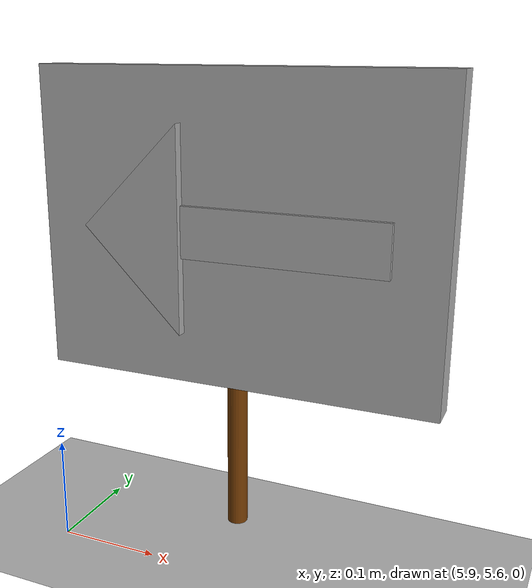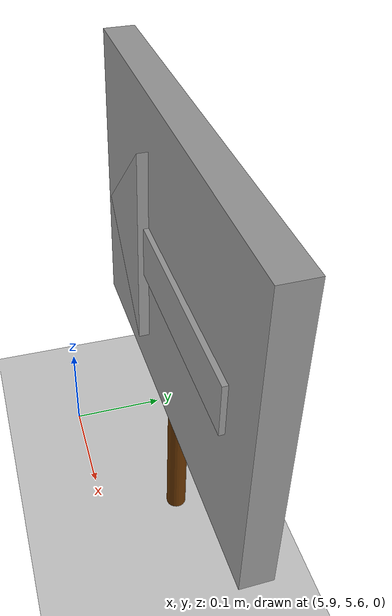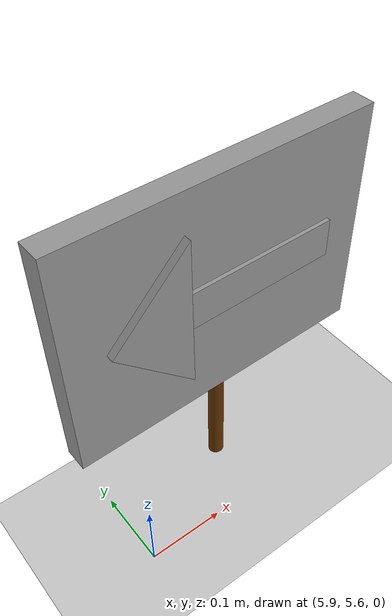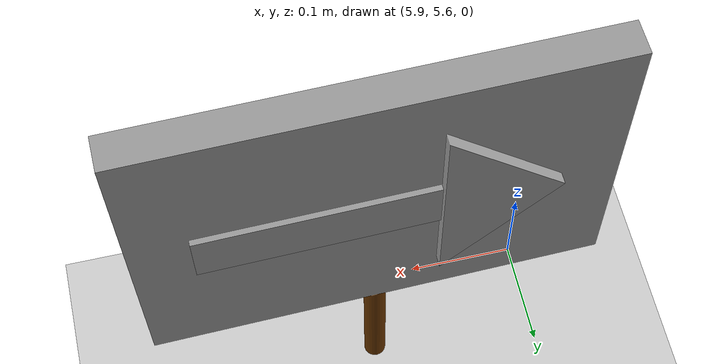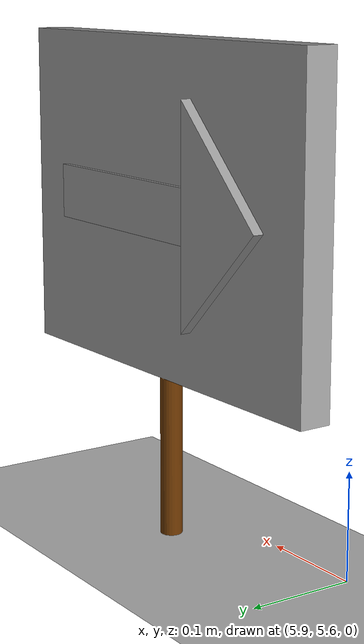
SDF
<sdf version="1.7">
 <world name="default">
  <model name="ground_plane">
   <static>1</static>
   <link name="link">
    <collision name="collision">
     <geometry><plane><normal>0 0 1</normal><size>100 100</size></plane></geometry>
     <surface>
      <contact><collide_bitmask>65535</collide_bitmask></contact>
      <friction><ode><mu>100</mu><mu2>50</mu2></ode></friction>
     </surface>
    </collision>
    <visual name="visual">
     <cast_shadows>0</cast_shadows>
     <geometry><plane><normal>0 0 1</normal><size>100 100</size></plane></geometry>
     <material>
      <script><uri>file://media/materials/scripts/gazebo.material</uri><name>Gazebo/Grey</name></script>
     </material>
    </visual>
   </link>
  </model>
  <model name="arrow_board_2">
   <link name="link_0">
    <inertial>
     <mass>1</mass>
     <inertia><ixx>0.145833</ixx><ixy>0</ixy><ixz>0</ixz><iyy>0.145833</iyy><iyz>0</iyz><izz>0.125</izz></inertia>
    </inertial>
    <pose>-0.01675 0.00625 0.1625 0 -0 0</pose>
    <gravity>0</gravity>
    <visual name="visual">
     <geometry><cylinder><radius>0.01</radius><length>0.3</length></cylinder></geometry>
     <material>
      <lighting>1</lighting>
      <script><uri>file://media/materials/scripts/gazebo.material</uri><name>Gazebo/Grey</name></script>
      <shader type="pixel"><normal_map>__default__</normal_map></shader>
      <ambient>0.4 0.2 0 1</ambient>
      <diffuse>0.4 0.2 0 1</diffuse>
      <specular>0 0 0 1</specular>
      <emissive>0 0 0 1</emissive>
     </material>
    </visual>
    <collision name="collision">
     <geometry><cylinder><radius>0.01</radius><length>0.3</length></cylinder></geometry>
     <surface>
      <friction>
       <ode><mu>1</mu><mu2>1</mu2><fdir1>0 0 0</fdir1><slip1>0</slip1><slip2>0</slip2></ode>
       <torsional>
        <coefficient>1</coefficient>
        <patch_radius>0</patch_radius>
        <surface_radius>0</surface_radius>
        <use_patch_radius>1</use_patch_radius>
        <ode><slip>0</slip></ode>
       </torsional>
      </friction>
      <bounce><restitution_coefficient>0</restitution_coefficient><threshold>1e+06</threshold></bounce>
      <contact>
       <collide_without_contact>0</collide_without_contact>
       <collide_without_contact_bitmask>1</collide_without_contact_bitmask>
       <collide_bitmask>1</collide_bitmask>
       <ode>
        <soft_cfm>0</soft_cfm>
        <soft_erp>0.2</soft_erp>
        <kp>1e+13</kp>
        <kd>1</kd>
        <max_vel>0.01</max_vel>
        <min_depth>0</min_depth>
       </ode>
       <bullet>
        <split_impulse>1</split_impulse>
        <split_impulse_penetration_threshold>-0.01</split_impulse_penetration_threshold>
        <soft_cfm>0</soft_cfm>
        <soft_erp>0.2</soft_erp>
        <kp>1e+13</kp>
        <kd>1</kd>
       </bullet>
      </contact>
     </surface>
    </collision>
   </link>
   <link name="link_1">
    <inertial>
     <mass>1</mass>
     <inertia>
      <ixx>0.166667</ixx>
      <ixy>0</ixy>
      <ixz>0</ixz>
      <iyy>0.166667</iyy>
      <iyz>0</iyz>
      <izz>0.166667</izz>
     </inertia>
    </inertial>
    <pose>-0.01675 0.00625 0.3125 0 -0 0</pose>
    <gravity>0</gravity>
    <visual name="visual">
     <geometry><box><size>0.4 0.03 0.3</size></box></geometry>
     <material>
      <lighting>1</lighting>
      <script><uri>file://media/materials/scripts/gazebo.material</uri><name>Gazebo/Grey</name></script>
      <shader type="pixel"><normal_map>__default__</normal_map></shader>
      <ambient>1 1 1 1</ambient>
      <diffuse>1 1 1 1</diffuse>
      <specular>1 1 1 1</specular>
      <emissive>0 0 0 1</emissive>
     </material>
    </visual>
    <collision name="collision">
     <geometry><box><size>0.4 0.03 0.3</size></box></geometry>
     <surface>
      <friction>
       <ode><mu>1</mu><mu2>1</mu2><fdir1>0 0 0</fdir1><slip1>0</slip1><slip2>0</slip2></ode>
       <torsional>
        <coefficient>1</coefficient>
        <patch_radius>0</patch_radius>
        <surface_radius>0</surface_radius>
        <use_patch_radius>1</use_patch_radius>
        <ode><slip>0</slip></ode>
       </torsional>
      </friction>
      <bounce><restitution_coefficient>0</restitution_coefficient><threshold>1e+06</threshold></bounce>
      <contact>
       <collide_without_contact>0</collide_without_contact>
       <collide_without_contact_bitmask>1</collide_without_contact_bitmask>
       <collide_bitmask>1</collide_bitmask>
       <ode>
        <soft_cfm>0</soft_cfm>
        <soft_erp>0.2</soft_erp>
        <kp>1e+13</kp>
        <kd>1</kd>
        <max_vel>0.01</max_vel>
        <min_depth>0</min_depth>
       </ode>
       <bullet>
        <split_impulse>1</split_impulse>
        <split_impulse_penetration_threshold>-0.01</split_impulse_penetration_threshold>
        <soft_cfm>0</soft_cfm>
        <soft_erp>0.2</soft_erp>
        <kp>1e+13</kp>
        <kd>1</kd>
       </bullet>
      </contact>
     </surface>
    </collision>
   </link>
   <link name="link_2">
    <inertial>
     <mass>1</mass>
     <inertia>
      <ixx>0.166667</ixx>
      <ixy>0</ixy>
      <ixz>0</ixz>
      <iyy>0.166667</iyy>
      <iyz>0</iyz>
      <izz>0.166667</izz>
     </inertia>
    </inertial>
    <pose>-0.06675 0.00625 0.3125 0 -0 0</pose>
    <gravity>0</gravity>
    <visual name="visual">
     <geometry><box><size>0.2 0.04 0.05</size></box></geometry>
     <material>
      <lighting>1</lighting>
      <script><uri>file://media/materials/scripts/gazebo.material</uri><name>Gazebo/Grey</name></script>
      <shader type="pixel"><normal_map>__default__</normal_map></shader>
      <ambient>0 0 0 1</ambient>
      <diffuse>0 0 0 1</diffuse>
      <specular>0 0 0 1</specular>
      <emissive>0 0 0 1</emissive>
     </material>
    </visual>
    <collision name="collision">
     <geometry><box><size>0.2 0.04 0.05</size></box></geometry>
     <surface>
      <friction>
       <ode><mu>1</mu><mu2>1</mu2><fdir1>0 0 0</fdir1><slip1>0</slip1><slip2>0</slip2></ode>
       <torsional>
        <coefficient>1</coefficient>
        <patch_radius>0</patch_radius>
        <surface_radius>0</surface_radius>
        <use_patch_radius>1</use_patch_radius>
        <ode><slip>0</slip></ode>
       </torsional>
      </friction>
      <bounce><restitution_coefficient>0</restitution_coefficient><threshold>1e+06</threshold></bounce>
      <contact>
       <collide_without_contact>0</collide_without_contact>
       <collide_without_contact_bitmask>1</collide_without_contact_bitmask>
       <collide_bitmask>1</collide_bitmask>
       <ode>
        <soft_cfm>0</soft_cfm>
        <soft_erp>0.2</soft_erp>
        <kp>1e+13</kp>
        <kd>1</kd>
        <max_vel>0.01</max_vel>
        <min_depth>0</min_depth>
       </ode>
       <bullet>
        <split_impulse>1</split_impulse>
        <split_impulse_penetration_threshold>-0.01</split_impulse_penetration_threshold>
        <soft_cfm>0</soft_cfm>
        <soft_erp>0.2</soft_erp>
        <kp>1e+13</kp>
        <kd>1</kd>
       </bullet>
      </contact>
     </surface>
    </collision>
   </link>
   <link name="link_4">
    <inertial>
     <mass>1</mass>
     <inertia>
      <ixx>0.166667</ixx>
      <ixy>0</ixy>
      <ixz>0</ixz>
      <iyy>0.166667</iyy>
      <iyz>0</iyz>
      <izz>0.166667</izz>
     </inertia>
    </inertial>
    <pose>0.033583 -0.01875 0.2125 0 -0 0</pose>
    <gravity>0</gravity>
    <visual name="visual">
     <geometry>
      <mesh>
       <uri>/home/ritesh/mobrob_ws/src/mobrob/meshes/arrow_head.stl</uri>
       <scale>0.001 0.001 0.001</scale>
      </mesh>
     </geometry>
     <material>
      <lighting>1</lighting>
      <script><uri>file://media/materials/scripts/gazebo.material</uri><name>Gazebo/Grey</name></script>
      <shader type="pixel"><normal_map>__default__</normal_map></shader>
      <ambient>0 0 0 1</ambient>
      <diffuse>0 0 0 1</diffuse>
      <specular>0 0 0 1</specular>
      <emissive>0 0 0 1</emissive>
     </material>
    </visual>
    <collision name="collision">
     <geometry>
      <mesh>
       <uri>/home/ritesh/mobrob_ws/src/mobrob/meshes/arrow_head.stl</uri>
       <scale>0.001 0.001 0.001</scale>
      </mesh>
     </geometry>
     <surface>
      <friction>
       <ode><mu>1</mu><mu2>1</mu2><fdir1>0 0 0</fdir1><slip1>0</slip1><slip2>0</slip2></ode>
       <torsional>
        <coefficient>1</coefficient>
        <patch_radius>0</patch_radius>
        <surface_radius>0</surface_radius>
        <use_patch_radius>1</use_patch_radius>
        <ode><slip>0</slip></ode>
       </torsional>
      </friction>
      <bounce><restitution_coefficient>0</restitution_coefficient><threshold>1e+06</threshold></bounce>
      <contact>
       <collide_without_contact>0</collide_without_contact>
       <collide_without_contact_bitmask>1</collide_without_contact_bitmask>
       <collide_bitmask>1</collide_bitmask>
       <ode>
        <soft_cfm>0</soft_cfm>
        <soft_erp>0.2</soft_erp>
        <kp>1e+13</kp>
        <kd>1</kd>
        <max_vel>0.01</max_vel>
        <min_depth>0</min_depth>
       </ode>
       <bullet>
        <split_impulse>1</split_impulse>
        <split_impulse_penetration_threshold>-0.01</split_impulse_penetration_threshold>
        <soft_cfm>0</soft_cfm>
        <soft_erp>0.2</soft_erp>
        <kp>1e+13</kp>
        <kd>1</kd>
       </bullet>
      </contact>
     </surface>
    </collision>
   </link>
   <static>0</static>
   <pose>6.04004 5.68364 0 0 0 -3.12148</pose>
  </model>
 </world>
</sdf>
